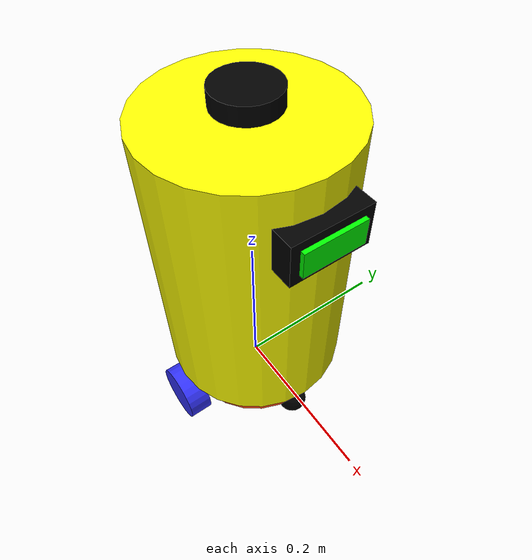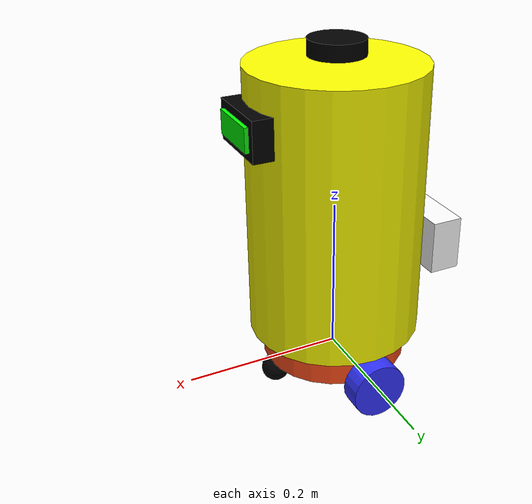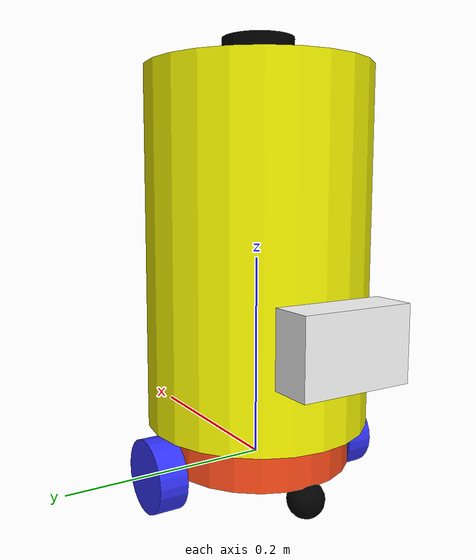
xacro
<?xml version="1.0"?>
<robot xmlns:xacro="http://www.ros.org/wiki/xacro"  name="homebot">

    <xacro:arg name="use_ros2_control" default="false"/>

    <xacro:arg name="sim_mode" default="true"/>

    <xacro:include filename="robot_core.xacro"/>

    <xacro:include filename="lidar.xacro"/>

    <xacro:include filename="camera.xacro"/>

    <xacro:if value="$(arg use_ros2_control)">
        <xacro:include filename="ros2_control.xacro"/>
    </xacro:if>
    <xacro:unless value="$(arg use_ros2_control)">
        <xacro:include filename="gazebo_control.xacro"/>
    </xacro:unless>

</robot>

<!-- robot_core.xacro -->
<robot xmlns:xacro="http://www.ros.org/wiki/xacro">

    <xacro:include filename="inertial_macros.xacro"/>

            <!-- Farben -->

    <material name="white">
        <color rgba="1 1 1 1"/>
    </material>

    <material name="black">
        <color rgba="0 0 0 1"/>
    </material>

    <material name="blue">
        <color rgba="0.2 0.2 1 1"/>
    </material>

    <material name="yellow">
        <color rgba="1 1 0 1"/>
    </material>

    <material name="orange">
        <color rgba="1 0.3 0.1 1"/>
    </material>

    <material name="green">
        <color rgba="0.0 1.0 0.0 1.0"/>
    </material>

    <!-- BASE LINK -->

    <link name="base_footprint"/>

    <link name="base_link"/>
    <!-- BASE FOOT PRINT -->

    <joint name="base_footprint_joint" type="fixed">
        <parent link="base_footprint"/>
        <child link="base_link"/>
        <origin xyz="0.0 0.0 0.0" rpy="0.0 0.0 0.0"/>
    </joint>

    <!-- CHASSIS LINK -->
    <joint name="cassis_joint" type="fixed">
        <parent link="base_link"/>
        <child link="chassis"/>
        <origin xyz="-0.093 0.0 0.0"/>

    </joint>

    <link name="chassis">
        <visual>
            <origin xyz="0.093 0.0 0.02"/>
            <geometry>
                <cylinder radius="0.093" length="0.045"/>
            </geometry>
            <material name="orange"/>
        </visual>
        <collision>
            <origin xyz="0.093 0.0 0.075"/>
            <geometry>
                <cylinder radius="0.093" length="0.045"/>
            </geometry>
        </collision>
        <xacro:inertial_cylinder mass="0.5" length="0.045" radius="0.093">
            <origin xyz="0.0 0.0 0.0" rpy="0.0 0.0 0.0"/>
        </xacro:inertial_cylinder>
    </link>

    <gazebo reference="chassis">
        <material>Gazebo/Orange</material>
    </gazebo>

        <!-- LEFT WHEEL LINK -->

    <joint name="left_wheel_joint" type="continuous">
        <origin xyz="0.0 0.11 0.0" rpy="${-pi/2} 0.0 0.0"/>
        <parent link="base_link"/>
        <child link="left_wheel"/>
        <axis xyz="0.0 0.0 1.0"/>
        <limit lower="0.0" upper="0.0" effort="0.0" velocity="0.0"/>
    </joint>

    <link name="left_wheel">
        <visual>
            <geometry>
                <cylinder radius="0.035" length="0.028"/>
            </geometry>
            <material name="blue"/>
        </visual>
        <collision>
            <geometry>
                <cylinder radius="0.035" length="0.028"/>
            </geometry>
        </collision>
        <xacro:inertial_cylinder mass="0.1" length="0.028" radius="0.035">
            <origin xyz="0.0 0.0 0.0" rpy="0.0 0.0 0.0"/>
        </xacro:inertial_cylinder>
    </link>

    <gazebo reference="left_wheel">
        <material>Gazebo/Blue</material>
    </gazebo>

    <!-- RIGHT WHEEL LINK -->
    <joint name="right_wheel_joint" type="continuous">
        <origin xyz="0.0 -0.11 0.0" rpy="${pi/2} 0.0 0.0"/>
        <parent link="base_link"/>
        <child link="right_wheel"/>
        <axis xyz="0.0 0.0 -1.0"/>
        <limit lower="0.0" upper="0.0" effort="0.0" velocity="0.0"/>
    </joint>

    <link name="right_wheel">
        <visual>
            <geometry>
                <cylinder radius="0.035" length="0.028"/>
            </geometry>
            <material name="blue"/>
        </visual>
        <collision>
            <geometry>
                <cylinder radius="0.035" length="0.028"/>
            </geometry>
        </collision>
        <xacro:inertial_cylinder mass="0.1" length="0.028" radius="0.035">
            <origin xyz="0.0 0.0 0.0" rpy="0.0 0.0 0.0"/>
        </xacro:inertial_cylinder>
    </link>

    <gazebo reference="right_wheel">
        <material>Gazebo/Blue</material>
    </gazebo>

    <!-- CASTER WHEEL FRONT LINK -->

    <joint name="caster_wheel_front_joint" type="fixed">
        <parent link="base_link"/>
        <child link="caster_wheel_front"/>
        <origin xyz="0.085 0.0 -0.016"/>
    </joint>

    <link name="caster_wheel_front">
        <visual>
            <geometry>
                <sphere radius="0.018"/>
            </geometry>
            <material name="black"/>
        </visual>
        <collision>
            <geometry>
                <sphere radius="0.018"/>
            </geometry>
        </collision>
        <xacro:inertial_sphere mass="0.3" radius="0.018">
            <origin xyz="0.0 0.0 0.0" rpy="0.0 0.0 0.0"/>
        </xacro:inertial_sphere>
    </link>

    <gazebo reference="caster_wheel_front">
        <material>Gazebo/Black</material>
        <mu1 value="0.001"/>
        <mu2 value="0.001"/>
    </gazebo>

    <!-- CASTER WHEEL REAR LINK -->

    <joint name="caster_wheel_rear_joint" type="fixed">
        <parent link="base_link"/>
        <child link="caster_wheel_rear"/>
        <origin xyz="-0.085 0.0 -0.0165"/>
    </joint>

    <link name="caster_wheel_rear">
        <visual>
            <geometry>
                <sphere radius="0.018"/>
            </geometry>
            <material name="black"/>
        </visual>
        <collision>
            <geometry>
                <sphere radius="0.018"/>
            </geometry>
        </collision>
        <xacro:inertial_sphere mass="0.3" radius="0.018">
            <origin xyz="0.0 0.0 0.0" rpy="0.0 0.0 0.0"/>
        </xacro:inertial_sphere>
    </link>

    <gazebo reference="caster_wheel_rear">
        <material>Gazebo/Black</material>
        <mu1 value="0.001"/>
        <mu2 value="0.001"/>
    </gazebo>

    <!-- Body Part -->

    <link name="body">
        <visual>
            <geometry>
                <cylinder radius="0.11" length="0.345"/>
            </geometry>
            <material name="yellow"/>
        </visual>
        <collision>
            <geometry>
                <cylinder radius="0.11" length="0.345"/>
            </geometry>
        </collision>
        <xacro:inertial_cylinder mass="0.1" length="0.345" radius="0.11">
            <origin xyz="0.0 0.0 0.0" rpy="0.0 0.0 0.0"/>
        </xacro:inertial_cylinder>
    </link>

    <gazebo reference="body">
        <material>Gazebo/Yellow</material>
    </gazebo>

    <joint name="body_joint" type="fixed">
        <parent link="base_link"/>
        <child link="body"/>
        <origin xyz="0.0 0.0 0.21"/>
    </joint>

    <!-- LCD DISPLAY and In_display  -->

    <link name="display">
        <visual>
            <geometry>
                <box size="0.09 0.09 0.05"/>
            </geometry>
            <material name="black"/>
        </visual>
        <collision>
            <geometry>
                <box size="0.09 0.09 0.03"/>
            </geometry>
        </collision>
        <xacro:inertial_box mass="0.1" x="0.09" y="0.09" z="0.05">
            <origion xyz="0.0 0.0 0.0" rpy="0.0 0.0 0.0"/>
        </xacro:inertial_box>
    </link>

    <gazebo reference="display">
        <material>Gazebo/Black</material>
    </gazebo>

    <joint name="display_body_joint" type="fixed">
        <origin xyz="0.08 0.0 0.11" rpy="0 0.0 0.0"/>
        <parent link="body"/>
        <child link="display"/>
    </joint>

    <link name="in_display">
        <visual>
            <geometry>
                <box size="0.09 0.07 0.03"/>
            </geometry>
            <material name="green"/>
        </visual>
        <collision>
            <geometry>
                <box size="0.09 0.07 0.03"/>
            </geometry>
        </collision>
        <xacro:inertial_box mass="0.1" x="0.09" y="0.09" z="0.03">
            <origion xyz="0.0 0.0 0.0" rpy="0.0 0.0 0.0"/>
        </xacro:inertial_box>
    </link>

    <gazebo reference="in_display">
        <material>Gazebo/Green</material>
    </gazebo>

    <joint name="in_display_body_joint" type="fixed">
        <origin xyz="0.085 0.0 0.11" rpy="0 0.0 0.0"/>
        <parent link="body"/>
        <child link="in_display"/>
    </joint>

</robot>

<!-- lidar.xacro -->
<robot xmlns:xacro="http://www.ros.org/wiki/xacro" >

        <!-- LIDAR -->

        <link name="laser_frame">
            <visual>
                <geometry>
                    <cylinder radius="0.035" length="0.02"/>
                </geometry>
                <material name="black"/>
            </visual>
            <collision>
                <geometry>
                    <cylinder radius="0.035" length="0.02"/>
                </geometry>
                <material name="black"/>
            </collision>
            <xacro:inertial_cylinder mass="0.1" length="0.02" radius="0.035">
                <origin xyz="0.0 0.0 0.0" rpy="0.0 0.0 0.0"/>
            </xacro:inertial_cylinder>
        </link>

        <gazebo reference="laser_frame">
            <material>Gazebo/Black</material>
        </gazebo>

        <joint name="laser_joint" type="fixed">
            <parent link="base_link"/>
            <child link="laser_frame"/>
            <origin xyz="0.0 0.0 0.4" rpy="0.0 0.0 -1.57"/>
        </joint>

        <gazebo reference="laser_frame">
            <material>Gazebo/Black</material>

            <sensor name="laser" type="ray">
                <pose> 0 0 0 0 0 0 </pose>
                <visualize>true</visualize>
                <update_rate>10</update_rate>
                <ray>
                    <scan>
                        <horizontal>
                            <samples>360</samples>
                            <resolution>1</resolution>
                            <min_angle>0.00</min_angle>
                            <max_angle>3.14</max_angle>
                        </horizontal>
                    </scan>
                    <range>
                        <min>0.3</min>
                        <max>6</max>
                    </range>
                </ray>
                <plugin name="laser_controller" filename="libgazebo_ros_ray_sensor.so">
                    <ros>
                        <argument>~/out:=scan</argument>
                    </ros>
                    <output_type>sensor_msgs/LaserScan</output_type>
                    <frame_name>laser_frame</frame_name>
                </plugin>
            </sensor>
        </gazebo>

</robot>

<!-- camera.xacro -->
<robot xmlns:xacro="http://www.ros.org/wiki/xacro">

    <!-- Cam-->
    <joint name="cam_joint" type="fixed">
        <parent link="chassis"/>
        <child link="cam"/>
        <origin xyz="-0.04 0 0.138 "/>
    </joint>

    <link name="cam">
        <visual>
            <origin xyz="0.0 0.0 0.0" rpy="0.0 0.0 0.0"/>
            <geometry>
                <box size="0.04 0.11 0.07"/>
            </geometry>
            <material name="white"/>
        </visual>
        <collision>
            <origin xyz="0.0 0.0 0.0" rpy="0.0 0.0 0.0"/>
            <geometry>
                <box size="0.04 0.11 0.07"/>
            </geometry>
        </collision>
        <xacro:inertial_box mass="0.2" x="0.04" y="0.11" z="0.07">
            <origin xyz="0.0 0.0 0.0" rpy="0.0 0.0 0.0"/>
        </xacro:inertial_box>
    </link>
    <gazebo reference="cam">
        <material>Gazebo/White</material>
    </gazebo>

    <gazebo reference="cam">
        <material>Gazebo/Orange</material>

        <sensor name="camera" type="camera">
            <pose> 0 0 0 0 0 0 </pose>
            <visualize>true</visualize>
            <update_rate>10</update_rate>
            <camera>
                <horizontal_fov>1.089</horizontal_fov>
                <image>
                    <format>R8G8B8</format>
                    <width>640</width>
                    <height>480</height>
                </image>
                <clip>
                    <near>0.05</near>
                    <far>8.0</far>
                </clip>
            </camera>
            <plugin name="camera_controller" filename="libgazebo_ros_camera.so">
                <frame_name>camera_link_optical</frame_name>
            </plugin>
        </sensor>
    </gazebo>

</robot>
